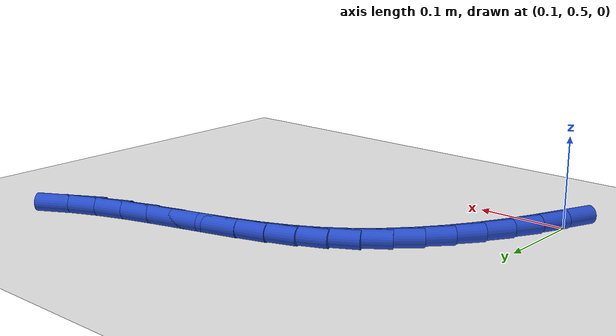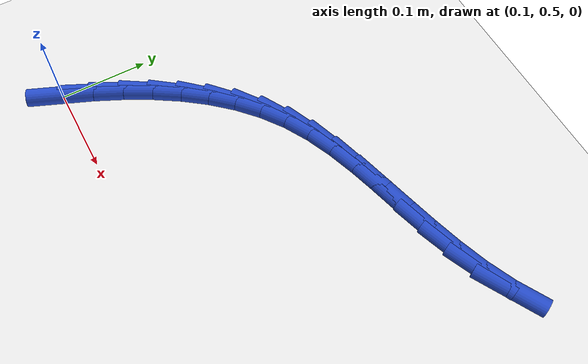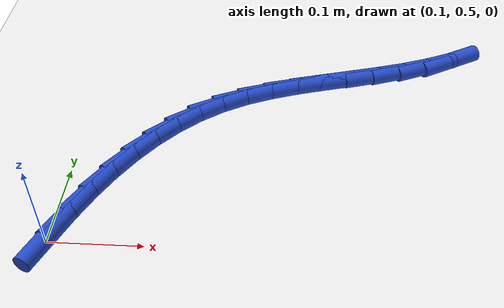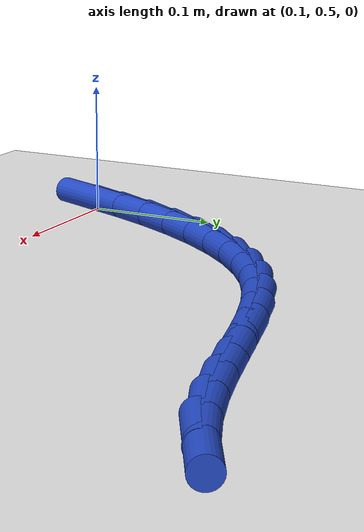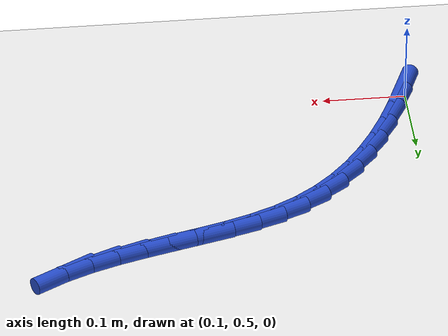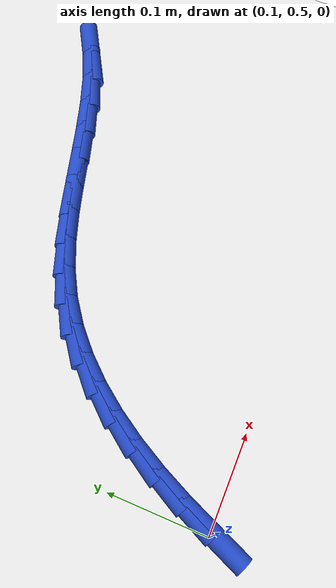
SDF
<sdf version="1.6">
 <world name="default">
  <model name="ground_plane">
   <static>1</static>
   <link name="link">
    <collision name="collision">
     <geometry><plane><normal>0 0 1</normal><size>100 100</size></plane></geometry>
     <surface><friction><ode><mu>100</mu><mu2>50</mu2></ode></friction></surface>
    </collision>
    <visual name="visual">
     <cast_shadows>0</cast_shadows>
     <geometry><plane><normal>0 0 1</normal><size>100 100</size></plane></geometry>
     <material>
      <script><uri>file://media/materials/scripts/gazebo.material</uri><name>Gazebo/WhiteGlow</name></script>
     </material>
    </visual>
   </link>
  </model>
  <model name="line">
   <link name="link_15">
    <pose>0.10392861161274072 0.5004028891235841 0.01 0 1.57 1.18148954786675</pose>
    <collision name="collision">
     <geometry><cylinder><radius>0.01</radius><length>0.08</length></cylinder></geometry>
    </collision>
    <visual name="visual">
     <material>
      <script><name>Gazebo/Blue</name><uri>file://media/materials/scripts/gazebo.material</uri></script>
     </material>
     <geometry><cylinder><radius>0.01</radius><length>0.08</length></cylinder></geometry>
    </visual>
   </link>
   <link name="link_16">
    <pose>0.11721811287343892 0.5327969656801468 0.01 0 1.57 1.1324803689764762</pose>
    <collision name="collision">
     <geometry><cylinder><radius>0.01</radius><length>0.08</length></cylinder></geometry>
    </collision>
    <visual name="visual">
     <material>
      <script><name>Gazebo/Blue</name><uri>file://media/materials/scripts/gazebo.material</uri></script>
     </material>
     <geometry><cylinder><radius>0.01</radius><length>0.08</length></cylinder></geometry>
    </visual>
   </link>
   <link name="link_17">
    <pose>0.13182088206814488 0.5639512100697607 0.01 0 1.57 1.074741272115694</pose>
    <collision name="collision">
     <geometry><cylinder><radius>0.01</radius><length>0.08</length></cylinder></geometry>
    </collision>
    <visual name="visual">
     <material>
      <script><name>Gazebo/Blue</name><uri>file://media/materials/scripts/gazebo.material</uri></script>
     </material>
     <geometry><cylinder><radius>0.01</radius><length>0.08</length></cylinder></geometry>
    </visual>
   </link>
   <link name="link_18">
    <pose>0.14786829029976734 0.5936032237395913 0.01 0 1.57 1.0072152260446683</pose>
    <collision name="collision">
     <geometry><cylinder><radius>0.01</radius><length>0.08</length></cylinder></geometry>
    </collision>
    <visual name="visual">
     <material>
      <script><name>Gazebo/Blue</name><uri>file://media/materials/scripts/gazebo.material</uri></script>
     </material>
     <geometry><cylinder><radius>0.01</radius><length>0.08</length></cylinder></geometry>
    </visual>
   </link>
   <link name="link_19">
    <pose>0.16549170867121502 0.6214906081368037 0.01 0 1.57 0.9288925972312421</pose>
    <collision name="collision">
     <geometry><cylinder><radius>0.01</radius><length>0.08</length></cylinder></geometry>
    </collision>
    <visual name="visual">
     <material>
      <script><name>Gazebo/Blue</name><uri>file://media/materials/scripts/gazebo.material</uri></script>
     </material>
     <geometry><cylinder><radius>0.01</radius><length>0.08</length></cylinder></geometry>
    </visual>
   </link>
   <link name="link_20">
    <pose>0.18482250828539662 0.647350964708563 0.01 0 1.57 0.8390202098490814</pose>
    <collision name="collision">
     <geometry><cylinder><radius>0.01</radius><length>0.08</length></cylinder></geometry>
    </collision>
    <visual name="visual">
     <material>
      <script><name>Gazebo/Blue</name><uri>file://media/materials/scripts/gazebo.material</uri></script>
     </material>
     <geometry><cylinder><radius>0.01</radius><length>0.08</length></cylinder></geometry>
    </visual>
   </link>
   <link name="link_21">
    <pose>0.20599206024522093 0.6709218949020351 0.01 0 1.57 0.7374135426826905</pose>
    <collision name="collision">
     <geometry><cylinder><radius>0.01</radius><length>0.08</length></cylinder></geometry>
    </collision>
    <visual name="visual">
     <material>
      <script><name>Gazebo/Blue</name><uri>file://media/materials/scripts/gazebo.material</uri></script>
     </material>
     <geometry><cylinder><radius>0.01</radius><length>0.08</length></cylinder></geometry>
    </visual>
   </link>
   <link name="link_22">
    <pose>0.22913173565359662 0.6919410001643849 0.01 0 1.57 0.6248376676247132</pose>
    <collision name="collision">
     <geometry><cylinder><radius>0.01</radius><length>0.08</length></cylinder></geometry>
    </collision>
    <visual name="visual">
     <material>
      <script><name>Gazebo/Blue</name><uri>file://media/materials/scripts/gazebo.material</uri></script>
     </material>
     <geometry><cylinder><radius>0.01</radius><length>0.08</length></cylinder></geometry>
    </visual>
   </link>
   <link name="link_23">
    <pose>0.2543729056134324 0.7101458819427775 0.01 0 1.57 0.505456203031287</pose>
    <collision name="collision">
     <geometry><cylinder><radius>0.01</radius><length>0.08</length></cylinder></geometry>
    </collision>
    <visual name="visual">
     <material>
      <script><name>Gazebo/Blue</name><uri>file://media/materials/scripts/gazebo.material</uri></script>
     </material>
     <geometry><cylinder><radius>0.01</radius><length>0.08</length></cylinder></geometry>
    </visual>
   </link>
   <link name="link_24">
    <pose>0.281812740319468 0.7253313149945136 0.01 0 1.57 0.4030541246867624</pose>
    <collision name="collision">
     <geometry><cylinder><radius>0.01</radius><length>0.08</length></cylinder></geometry>
    </collision>
    <visual name="visual">
     <material>
      <script><name>Gazebo/Blue</name><uri>file://media/materials/scripts/gazebo.material</uri></script>
     </material>
     <geometry><cylinder><radius>0.01</radius><length>0.08</length></cylinder></geometry>
    </visual>
   </link>
   <link name="link_25">
    <pose>0.3112059698614377 0.7378645277155264 0.01 0 1.57 0.32978577033556566</pose>
    <collision name="collision">
     <geometry><cylinder><radius>0.01</radius><length>0.08</length></cylinder></geometry>
    </collision>
    <visual name="visual">
     <material>
      <script><name>Gazebo/Blue</name><uri>file://media/materials/scripts/gazebo.material</uri></script>
     </material>
     <geometry><cylinder><radius>0.01</radius><length>0.08</length></cylinder></geometry>
    </visual>
   </link>
   <link name="link_26">
    <pose>0.34211004160571235 0.7484425440227146 0.01 0 1.57 0.2837718854165359</pose>
    <collision name="collision">
     <geometry><cylinder><radius>0.01</radius><length>0.08</length></cylinder></geometry>
    </collision>
    <visual name="visual">
     <material>
      <script><name>Gazebo/Blue</name><uri>file://media/materials/scripts/gazebo.material</uri></script>
     </material>
     <geometry><cylinder><radius>0.01</radius><length>0.08</length></cylinder></geometry>
    </visual>
   </link>
   <link name="link_27">
    <pose>0.3740800308030414 0.7577663532745199 0.01 0 1.57 0.262883048818698</pose>
    <collision name="collision">
     <geometry><cylinder><radius>0.01</radius><length>0.08</length></cylinder></geometry>
    </collision>
    <visual name="visual">
     <material>
      <script><name>Gazebo/Blue</name><uri>file://media/materials/scripts/gazebo.material</uri></script>
     </material>
     <geometry><cylinder><radius>0.01</radius><length>0.08</length></cylinder></geometry>
    </visual>
   </link>
   <link name="link_28">
    <pose>0.40667101270417433 0.7665369448293836 0.01 0 1.57 0.26573769492536553</pose>
    <collision name="collision">
     <geometry><cylinder><radius>0.01</radius><length>0.08</length></cylinder></geometry>
    </collision>
    <visual name="visual">
     <material>
      <script><name>Gazebo/Blue</name><uri>file://media/materials/scripts/gazebo.material</uri></script>
     </material>
     <geometry><cylinder><radius>0.01</radius><length>0.08</length></cylinder></geometry>
    </visual>
   </link>
   <link name="link_29">
    <pose>0.4394380625598607 0.7754553080457476 0.01 0 1.57 0.2919554439027531</pose>
    <collision name="collision">
     <geometry><cylinder><radius>0.01</radius><length>0.08</length></cylinder></geometry>
    </collision>
    <visual name="visual">
     <material>
      <script><name>Gazebo/Blue</name><uri>file://media/materials/scripts/gazebo.material</uri></script>
     </material>
     <geometry><cylinder><radius>0.01</radius><length>0.08</length></cylinder></geometry>
    </visual>
   </link>
   <link name="link_30">
    <pose>0.47193625562085056 0.7852224322820535 0.01 0 1.57 0.34205534865502046</pose>
    <collision name="collision">
     <geometry><cylinder><radius>0.01</radius><length>0.08</length></cylinder></geometry>
    </collision>
    <visual name="visual">
     <material>
      <script><name>Gazebo/Blue</name><uri>file://media/materials/scripts/gazebo.material</uri></script>
     </material>
     <geometry><cylinder><radius>0.01</radius><length>0.08</length></cylinder></geometry>
    </visual>
   </link>
   <link name="link_31">
    <pose>0.5037206671378931 0.7965393068967426 0.01 0 1.57 0.41702915107844857</pose>
    <collision name="collision">
     <geometry><cylinder><radius>0.01</radius><length>0.08</length></cylinder></geometry>
    </collision>
    <visual name="visual">
     <material>
      <script><name>Gazebo/Blue</name><uri>file://media/materials/scripts/gazebo.material</uri></script>
     </material>
     <geometry><cylinder><radius>0.01</radius><length>0.08</length></cylinder></geometry>
    </visual>
   </link>
   <link name="link_32">
    <pose>0.5343463723617382 0.8101069212482566 0.01 0 1.57 0.5128569070085608</pose>
    <collision name="collision">
     <geometry><cylinder><radius>0.01</radius><length>0.08</length></cylinder></geometry>
    </collision>
    <visual name="visual">
     <material>
      <script><name>Gazebo/Blue</name><uri>file://media/materials/scripts/gazebo.material</uri></script>
     </material>
     <geometry><cylinder><radius>0.01</radius><length>0.08</length></cylinder></geometry>
    </visual>
   </link>
  </model>
 </world>
</sdf>
